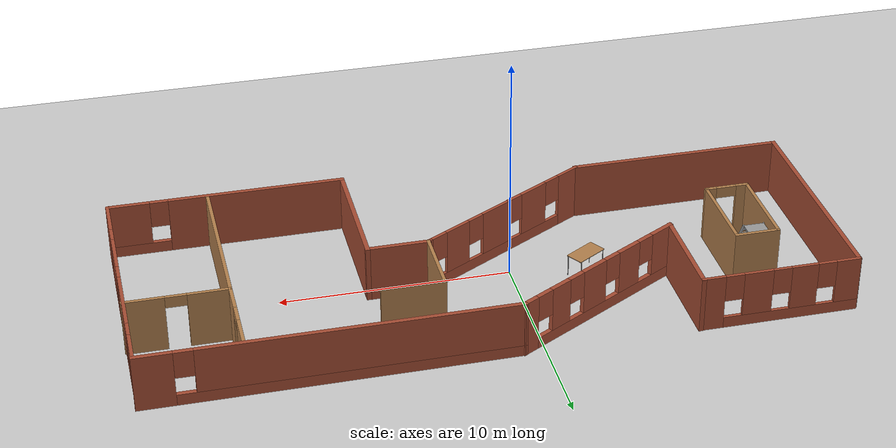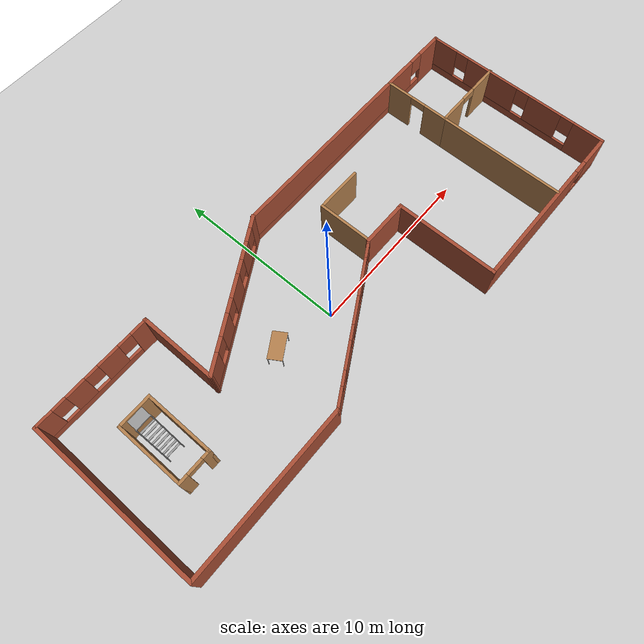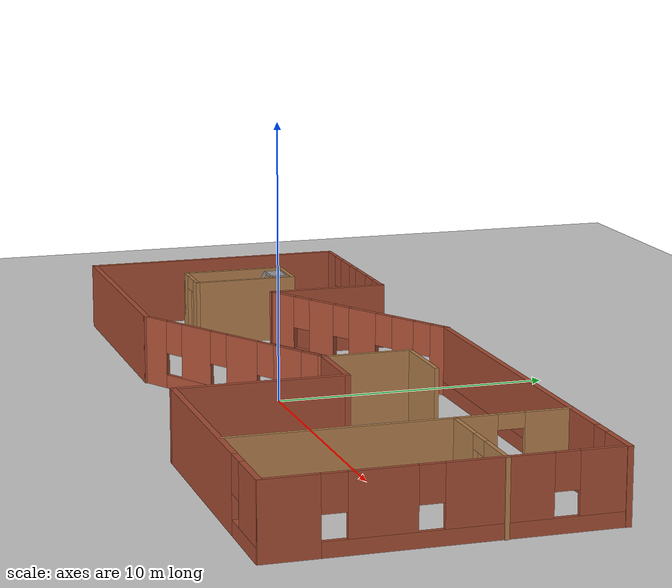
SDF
<sdf version="1.6">
 <world name="default">
  <light name="sun" type="directional">
   <pose>0 0 10 0 -0 0</pose>
   <diffuse>0.8 0.8 0.8 1</diffuse>
   <specular>0.2 0.2 0.2 1</specular>
   <attenuation>
    <range>1000</range>
    <constant>0.9</constant>
    <linear>0.01</linear>
    <quadratic>0.001</quadratic>
   </attenuation>
   <direction>-0.5 0.1 -0.9</direction>
  </light>
  <model name="ground_plane">
   <static>1</static>
   <link name="link">
    <collision name="collision">
     <geometry><plane><normal>0 0 1</normal><size>100 100</size></plane></geometry>
     <surface><friction><ode><mu>100</mu><mu2>50</mu2></ode></friction></surface>
    </collision>
    <visual name="visual">
     <cast_shadows>0</cast_shadows>
     <geometry><plane><normal>0 0 1</normal><size>100 100</size></plane></geometry>
     <material>
      <script><uri>file://media/materials/scripts/gazebo.material</uri><name>Gazebo/Grey</name></script>
     </material>
    </visual>
   </link>
  </model>
  <gravity>0 0 -9.8</gravity>
  <magnetic_field>6e-06 2.3e-05 -4.2e-05</magnetic_field>
  <atmosphere type="adiabatic"/>
  <physics name="default_physics" default="0" type="ode">
   <max_step_size>0.001</max_step_size>
   <real_time_factor>1</real_time_factor>
   <real_time_update_rate>1000</real_time_update_rate>
  </physics>
  <scene><ambient>0.4 0.4 0.4 1</ambient><background>0.7 0.7 0.7 1</background><shadows>1</shadows></scene>
  <spherical_coordinates>
   <surface_model>EARTH_WGS84</surface_model>
   <latitude_deg>0</latitude_deg>
   <longitude_deg>0</longitude_deg>
   <elevation>0</elevation>
   <heading_deg>0</heading_deg>
  </spherical_coordinates>
  <model name="less_horrible">
   <pose>1.58243 0.366715 0 0 -0 0</pose>
   <link name="Wall_11">
    <collision name="Wall_11_Collision">
     <geometry><box><size>9.54971 0.2 2.5</size></box></geometry>
     <pose>0 0 1.25 0 -0 0</pose>
    </collision>
    <visual name="Wall_11_Visual">
     <pose>0 0 1.25 0 -0 0</pose>
     <geometry><box><size>9.54971 0.2 2.5</size></box></geometry>
     <material>
      <script><uri>file://media/materials/scripts/gazebo.material</uri><name>Gazebo/Bricks</name></script>
      <ambient>1 1 1 1</ambient>
     </material>
     <meta><layer>0</layer></meta>
    </visual>
    <pose>-10.2616 -4.2375 0 0 -0 0</pose>
   </link>
   <link name="Wall_12">
    <pose>-1.75461 -2.025 0 0 -0 0.523617</pose>
    <visual name="Wall_12_Visual_0">
     <pose>-3.89721 0 1.25 0 -0 0</pose>
     <geometry><box><size>1.20558 0.15 2.5</size></box></geometry>
     <material>
      <script><uri>file://media/materials/scripts/gazebo.material</uri><name>Gazebo/Bricks</name></script>
      <ambient>1 1 1 1</ambient>
     </material>
     <meta><layer>0</layer></meta>
    </visual>
    <collision name="Wall_12_Collision_0">
     <geometry><box><size>1.20558 0.15 2.5</size></box></geometry>
     <pose>-3.89721 0 1.25 0 -0 0</pose>
    </collision>
    <visual name="Wall_12_Visual_1">
     <pose>0.602789 0 0.25 0 -0 0</pose>
     <geometry><box><size>7.79442 0.15 0.5</size></box></geometry>
     <material>
      <script><uri>file://media/materials/scripts/gazebo.material</uri><name>Gazebo/Bricks</name></script>
      <ambient>1 1 1 1</ambient>
     </material>
     <meta><layer>0</layer></meta>
    </visual>
    <collision name="Wall_12_Collision_1">
     <geometry><box><size>7.79442 0.15 0.5</size></box></geometry>
     <pose>0.602789 0 0.25 0 -0 0</pose>
    </collision>
    <visual name="Wall_12_Visual_2">
     <pose>-1.75307 0 1.5 0 -0 0</pose>
     <geometry><box><size>1.4827 0.15 2</size></box></geometry>
     <material>
      <script><uri>file://media/materials/scripts/gazebo.material</uri><name>Gazebo/Bricks</name></script>
      <ambient>1 1 1 1</ambient>
     </material>
     <meta><layer>0</layer></meta>
    </visual>
    <collision name="Wall_12_Collision_2">
     <geometry><box><size>1.4827 0.15 2</size></box></geometry>
     <pose>-1.75307 0 1.5 0 -0 0</pose>
    </collision>
    <visual name="Wall_12_Visual_3">
     <pose>0.551361 0 1.5 0 -0 0</pose>
     <geometry><box><size>1.52616 0.15 2</size></box></geometry>
     <material>
      <script><uri>file://media/materials/scripts/gazebo.material</uri><name>Gazebo/Bricks</name></script>
      <ambient>1 1 1 1</ambient>
     </material>
     <meta><layer>0</layer></meta>
    </visual>
    <collision name="Wall_12_Collision_3">
     <geometry><box><size>1.52616 0.15 2</size></box></geometry>
     <pose>0.551361 0 1.5 0 -0 0</pose>
    </collision>
    <visual name="Wall_12_Visual_4">
     <pose>2.76852 0 1.5 0 -0 0</pose>
     <geometry><box><size>1.30815 0.15 2</size></box></geometry>
     <material>
      <script><uri>file://media/materials/scripts/gazebo.material</uri><name>Gazebo/Bricks</name></script>
      <ambient>1 1 1 1</ambient>
     </material>
     <meta><layer>0</layer></meta>
    </visual>
    <collision name="Wall_12_Collision_4">
     <geometry><box><size>1.30815 0.15 2</size></box></geometry>
     <pose>2.76852 0 1.5 0 -0 0</pose>
    </collision>
    <visual name="Wall_12_Visual_5">
     <pose>4.3613 0 1.5 0 -0 0</pose>
     <geometry><box><size>0.277405 0.15 2</size></box></geometry>
     <material>
      <script><uri>file://media/materials/scripts/gazebo.material</uri><name>Gazebo/Bricks</name></script>
      <ambient>1 1 1 1</ambient>
     </material>
     <meta><layer>0</layer></meta>
    </visual>
    <collision name="Wall_12_Collision_5">
     <geometry><box><size>0.277405 0.15 2</size></box></geometry>
     <pose>4.3613 0 1.5 0 -0 0</pose>
    </collision>
    <visual name="Wall_12_Visual_6">
     <pose>-2.89442 0 1.9 0 -0 0</pose>
     <geometry><box><size>0.8 0.15 1.2</size></box></geometry>
     <material>
      <script><uri>file://media/materials/scripts/gazebo.material</uri><name>Gazebo/Bricks</name></script>
      <ambient>1 1 1 1</ambient>
     </material>
     <meta><layer>0</layer></meta>
    </visual>
    <collision name="Wall_12_Collision_6">
     <geometry><box><size>0.8 0.15 1.2</size></box></geometry>
     <pose>-2.89442 0 1.9 0 -0 0</pose>
    </collision>
    <visual name="Wall_12_Visual_7">
     <pose>-0.611721 0 1.9 0 -0 0</pose>
     <geometry><box><size>0.8 0.15 1.2</size></box></geometry>
     <material>
      <script><uri>file://media/materials/scripts/gazebo.material</uri><name>Gazebo/Bricks</name></script>
      <ambient>1 1 1 1</ambient>
     </material>
     <meta><layer>0</layer></meta>
    </visual>
    <collision name="Wall_12_Collision_7">
     <geometry><box><size>0.8 0.15 1.2</size></box></geometry>
     <pose>-0.611721 0 1.9 0 -0 0</pose>
    </collision>
    <visual name="Wall_12_Visual_8">
     <pose>1.71444 0 1.9 0 -0 0</pose>
     <geometry><box><size>0.8 0.15 1.2</size></box></geometry>
     <material>
      <script><uri>file://media/materials/scripts/gazebo.material</uri><name>Gazebo/Bricks</name></script>
      <ambient>1 1 1 1</ambient>
     </material>
     <meta><layer>0</layer></meta>
    </visual>
    <collision name="Wall_12_Collision_8">
     <geometry><box><size>0.8 0.15 1.2</size></box></geometry>
     <pose>1.71444 0 1.9 0 -0 0</pose>
    </collision>
    <visual name="Wall_12_Visual_9">
     <pose>3.8226 0 1.9 0 -0 0</pose>
     <geometry><box><size>0.8 0.15 1.2</size></box></geometry>
     <material>
      <script><uri>file://media/materials/scripts/gazebo.material</uri><name>Gazebo/Bricks</name></script>
      <ambient>1 1 1 1</ambient>
     </material>
     <meta><layer>0</layer></meta>
    </visual>
    <collision name="Wall_12_Collision_9">
     <geometry><box><size>0.8 0.15 1.2</size></box></geometry>
     <pose>3.8226 0 1.9 0 -0 0</pose>
    </collision>
   </link>
   <link name="Wall_13">
    <collision name="Wall_13_Collision">
     <geometry><box><size>2.80004 0.2 2.5</size></box></geometry>
     <pose>0 0 1.25 0 -0 0</pose>
    </collision>
    <visual name="Wall_13_Visual">
     <pose>0 0 1.25 0 -0 0</pose>
     <geometry><box><size>2.80004 0.2 2.5</size></box></geometry>
     <material>
      <script><uri>file://media/materials/scripts/gazebo.material</uri><name>Gazebo/Bricks</name></script>
      <ambient>1 1 1 1</ambient>
     </material>
     <meta><layer>0</layer></meta>
    </visual>
    <pose>3.37739 0.1875 0 0 -0 0</pose>
   </link>
   <link name="Wall_14">
    <collision name="Wall_14_Collision">
     <geometry><box><size>6.05 0.2 2.5</size></box></geometry>
     <pose>0 0 1.25 0 -0 0</pose>
    </collision>
    <visual name="Wall_14_Visual">
     <pose>0 0 1.25 0 -0 0</pose>
     <geometry><box><size>6.05 0.2 2.5</size></box></geometry>
     <material>
      <script><uri>file://media/materials/scripts/gazebo.material</uri><name>Gazebo/Bricks</name></script>
      <ambient>1 1 1 1</ambient>
     </material>
     <meta><layer>0</layer></meta>
    </visual>
    <pose>4.67739 -2.7375 0 0 0 -1.5708</pose>
   </link>
   <link name="Wall_18">
    <pose>9.77389 -5.6625 0 0 -0 0</pose>
    <visual name="Wall_18_Visual_0">
     <pose>-1.32868 0 1.25 0 -0 0</pose>
     <geometry><box><size>7.73564 0.2 2.5</size></box></geometry>
     <material>
      <script><uri>file://media/materials/scripts/gazebo.material</uri><name>Gazebo/Bricks</name></script>
      <ambient>1 1 1 1</ambient>
     </material>
     <meta><layer>0</layer></meta>
    </visual>
    <collision name="Wall_18_Collision_0">
     <geometry><box><size>7.73564 0.2 2.5</size></box></geometry>
     <pose>-1.32868 0 1.25 0 -0 0</pose>
    </collision>
    <visual name="Wall_18_Visual_1">
     <pose>3.86782 0 0.25 0 -0 0</pose>
     <geometry><box><size>2.65736 0.2 0.5</size></box></geometry>
     <material>
      <script><uri>file://media/materials/scripts/gazebo.material</uri><name>Gazebo/Bricks</name></script>
      <ambient>1 1 1 1</ambient>
     </material>
     <meta><layer>0</layer></meta>
    </visual>
    <collision name="Wall_18_Collision_1">
     <geometry><box><size>2.65736 0.2 0.5</size></box></geometry>
     <pose>3.86782 0 0.25 0 -0 0</pose>
    </collision>
    <visual name="Wall_18_Visual_2">
     <pose>4.26782 0 1.5 0 -0 0</pose>
     <geometry><box><size>1.85736 0.2 2</size></box></geometry>
     <material>
      <script><uri>file://media/materials/scripts/gazebo.material</uri><name>Gazebo/Bricks</name></script>
      <ambient>1 1 1 1</ambient>
     </material>
     <meta><layer>0</layer></meta>
    </visual>
    <collision name="Wall_18_Collision_2">
     <geometry><box><size>1.85736 0.2 2</size></box></geometry>
     <pose>4.26782 0 1.5 0 -0 0</pose>
    </collision>
    <visual name="Wall_18_Visual_3">
     <pose>2.93914 0 1.9 0 -0 0</pose>
     <geometry><box><size>0.8 0.2 1.2</size></box></geometry>
     <material>
      <script><uri>file://media/materials/scripts/gazebo.material</uri><name>Gazebo/Bricks</name></script>
      <ambient>1 1 1 1</ambient>
     </material>
     <meta><layer>0</layer></meta>
    </visual>
    <collision name="Wall_18_Collision_3">
     <geometry><box><size>0.8 0.2 1.2</size></box></geometry>
     <pose>2.93914 0 1.9 0 -0 0</pose>
    </collision>
   </link>
   <link name="Wall_21">
    <pose>10.6116 3.68688 0 0 0 -1.5708</pose>
    <visual name="Wall_21_Visual_0">
     <pose>-1.17669 0 1.25 0 -0 0</pose>
     <geometry><box><size>1.64661 0.15 2.5</size></box></geometry>
     <material>
      <script><uri>file://media/materials/scripts/gazebo.material</uri><name>Gazebo/Wood</name></script>
      <ambient>1 1 1 1</ambient>
     </material>
     <meta><layer>0</layer></meta>
    </visual>
    <collision name="Wall_21_Collision_0">
     <geometry><box><size>1.64661 0.15 2.5</size></box></geometry>
     <pose>-1.17669 0 1.25 0 -0 0</pose>
    </collision>
    <visual name="Wall_21_Visual_1">
     <pose>1.27331 0 1.25 0 -0 0</pose>
     <geometry><box><size>1.45338 0.15 2.5</size></box></geometry>
     <material>
      <script><uri>file://media/materials/scripts/gazebo.material</uri><name>Gazebo/Wood</name></script>
      <ambient>1 1 1 1</ambient>
     </material>
     <meta><layer>0</layer></meta>
    </visual>
    <collision name="Wall_21_Collision_1">
     <geometry><box><size>1.45338 0.15 2.5</size></box></geometry>
     <pose>1.27331 0 1.25 0 -0 0</pose>
    </collision>
    <visual name="Wall_21_Visual_2">
     <pose>0.096615 0 2.25 0 -0 0</pose>
     <geometry><box><size>0.9 0.15 0.5</size></box></geometry>
     <material>
      <script><uri>file://media/materials/scripts/gazebo.material</uri><name>Gazebo/Wood</name></script>
      <ambient>1 1 1 1</ambient>
     </material>
     <meta><layer>0</layer></meta>
    </visual>
    <collision name="Wall_21_Collision_2">
     <geometry><box><size>0.9 0.15 0.5</size></box></geometry>
     <pose>0.096615 0 2.25 0 -0 0</pose>
    </collision>
   </link>
   <link name="Wall_22">
    <pose>12.7866 1.76188 0 0 -0 0</pose>
    <visual name="Wall_22_Visual_0">
     <pose>-1.33359 0 1.25 0 -0 0</pose>
     <geometry><box><size>1.83282 0.15 2.5</size></box></geometry>
     <material>
      <script><uri>file://media/materials/scripts/gazebo.material</uri><name>Gazebo/Wood</name></script>
      <ambient>1 1 1 1</ambient>
     </material>
     <meta><layer>0</layer></meta>
    </visual>
    <collision name="Wall_22_Collision_0">
     <geometry><box><size>1.83282 0.15 2.5</size></box></geometry>
     <pose>-1.33359 0 1.25 0 -0 0</pose>
    </collision>
    <visual name="Wall_22_Visual_1">
     <pose>1.36641 0 1.25 0 -0 0</pose>
     <geometry><box><size>1.76718 0.15 2.5</size></box></geometry>
     <material>
      <script><uri>file://media/materials/scripts/gazebo.material</uri><name>Gazebo/Wood</name></script>
      <ambient>1 1 1 1</ambient>
     </material>
     <meta><layer>0</layer></meta>
    </visual>
    <collision name="Wall_22_Collision_1">
     <geometry><box><size>1.76718 0.15 2.5</size></box></geometry>
     <pose>1.36641 0 1.25 0 -0 0</pose>
    </collision>
    <visual name="Wall_22_Visual_2">
     <pose>0.032816 0 2.25 0 -0 0</pose>
     <geometry><box><size>0.9 0.15 0.5</size></box></geometry>
     <material>
      <script><uri>file://media/materials/scripts/gazebo.material</uri><name>Gazebo/Wood</name></script>
      <ambient>1 1 1 1</ambient>
     </material>
     <meta><layer>0</layer></meta>
    </visual>
    <collision name="Wall_22_Collision_2">
     <geometry><box><size>0.9 0.15 0.5</size></box></geometry>
     <pose>0.032816 0 2.25 0 -0 0</pose>
    </collision>
   </link>
   <link name="Wall_24">
    <collision name="Wall_24_Collision">
     <geometry><box><size>7.5 0.15 2.5</size></box></geometry>
     <pose>0 0 1.25 0 -0 0</pose>
    </collision>
    <visual name="Wall_24_Visual">
     <pose>0 0 1.25 0 -0 0</pose>
     <geometry><box><size>7.5 0.15 2.5</size></box></geometry>
     <material>
      <script><uri>file://media/materials/scripts/gazebo.material</uri><name>Gazebo/Wood</name></script>
      <ambient>1 1 1 1</ambient>
     </material>
     <meta><layer>0</layer></meta>
    </visual>
    <pose>10.6116 -1.91312 0 0 0 -1.5708</pose>
   </link>
   <link name="Wall_3">
    <collision name="Wall_3_Collision">
     <geometry><box><size>10.0498 0.2 2.5</size></box></geometry>
     <pose>0 0 1.25 0 -0 0</pose>
    </collision>
    <visual name="Wall_3_Visual">
     <pose>0 0 1.25 0 -0 0</pose>
     <geometry><box><size>10.0498 0.2 2.5</size></box></geometry>
     <material>
      <script><uri>file://media/materials/scripts/gazebo.material</uri><name>Gazebo/Bricks</name></script>
      <ambient>1 1 1 1</ambient>
     </material>
     <meta><layer>0</layer></meta>
    </visual>
    <pose>-14.9366 0.6875 0 0 0 -1.5708</pose>
   </link>
   <link name="Wall_5">
    <pose>14.9134 -0.0265 0 0 -0 1.5708</pose>
    <visual name="Wall_5_Visual_0">
     <pose>-4.77314 0 1.25 0 -0 0</pose>
     <geometry><box><size>1.88171 0.15 2.5</size></box></geometry>
     <material>
      <script><uri>file://media/materials/scripts/gazebo.material</uri><name>Gazebo/Bricks</name></script>
      <ambient>1 1 1 1</ambient>
     </material>
     <meta><layer>0</layer></meta>
    </visual>
    <collision name="Wall_5_Collision_0">
     <geometry><box><size>1.88171 0.15 2.5</size></box></geometry>
     <pose>-4.77314 0 1.25 0 -0 0</pose>
    </collision>
    <visual name="Wall_5_Visual_1">
     <pose>0.940857 0 0.25 0 -0 0</pose>
     <geometry><box><size>9.54629 0.15 0.5</size></box></geometry>
     <material>
      <script><uri>file://media/materials/scripts/gazebo.material</uri><name>Gazebo/Bricks</name></script>
      <ambient>1 1 1 1</ambient>
     </material>
     <meta><layer>0</layer></meta>
    </visual>
    <collision name="Wall_5_Collision_1">
     <geometry><box><size>9.54629 0.15 0.5</size></box></geometry>
     <pose>0.940857 0 0.25 0 -0 0</pose>
    </collision>
    <visual name="Wall_5_Visual_2">
     <pose>-1.96928 0 1.5 0 -0 0</pose>
     <geometry><box><size>2.12602 0.15 2</size></box></geometry>
     <material>
      <script><uri>file://media/materials/scripts/gazebo.material</uri><name>Gazebo/Bricks</name></script>
      <ambient>1 1 1 1</ambient>
     </material>
     <meta><layer>0</layer></meta>
    </visual>
    <collision name="Wall_5_Collision_2">
     <geometry><box><size>2.12602 0.15 2</size></box></geometry>
     <pose>-1.96928 0 1.5 0 -0 0</pose>
    </collision>
    <visual name="Wall_5_Visual_3">
     <pose>1.58185 0 1.5 0 -0 0</pose>
     <geometry><box><size>3.37623 0.15 2</size></box></geometry>
     <material>
      <script><uri>file://media/materials/scripts/gazebo.material</uri><name>Gazebo/Bricks</name></script>
      <ambient>1 1 1 1</ambient>
     </material>
     <meta><layer>0</layer></meta>
    </visual>
    <collision name="Wall_5_Collision_3">
     <geometry><box><size>3.37623 0.15 2</size></box></geometry>
     <pose>1.58185 0 1.5 0 -0 0</pose>
    </collision>
    <visual name="Wall_5_Visual_4">
     <pose>4.89198 0 1.5 0 -0 0</pose>
     <geometry><box><size>1.64403 0.15 2</size></box></geometry>
     <material>
      <script><uri>file://media/materials/scripts/gazebo.material</uri><name>Gazebo/Bricks</name></script>
      <ambient>1 1 1 1</ambient>
     </material>
     <meta><layer>0</layer></meta>
    </visual>
    <collision name="Wall_5_Collision_4">
     <geometry><box><size>1.64403 0.15 2</size></box></geometry>
     <pose>4.89198 0 1.5 0 -0 0</pose>
    </collision>
    <visual name="Wall_5_Visual_5">
     <pose>-3.43229 0 1.9 0 -0 0</pose>
     <geometry><box><size>0.8 0.15 1.2</size></box></geometry>
     <material>
      <script><uri>file://media/materials/scripts/gazebo.material</uri><name>Gazebo/Bricks</name></script>
      <ambient>1 1 1 1</ambient>
     </material>
     <meta><layer>0</layer></meta>
    </visual>
    <collision name="Wall_5_Collision_5">
     <geometry><box><size>0.8 0.15 1.2</size></box></geometry>
     <pose>-3.43229 0 1.9 0 -0 0</pose>
    </collision>
    <visual name="Wall_5_Visual_6">
     <pose>-0.506265 0 1.9 0 -0 0</pose>
     <geometry><box><size>0.8 0.15 1.2</size></box></geometry>
     <material>
      <script><uri>file://media/materials/scripts/gazebo.material</uri><name>Gazebo/Bricks</name></script>
      <ambient>1 1 1 1</ambient>
     </material>
     <meta><layer>0</layer></meta>
    </visual>
    <collision name="Wall_5_Collision_6">
     <geometry><box><size>0.8 0.15 1.2</size></box></geometry>
     <pose>-0.506265 0 1.9 0 -0 0</pose>
    </collision>
    <visual name="Wall_5_Visual_7">
     <pose>3.66997 0 1.9 0 -0 0</pose>
     <geometry><box><size>0.8 0.15 1.2</size></box></geometry>
     <material>
      <script><uri>file://media/materials/scripts/gazebo.material</uri><name>Gazebo/Bricks</name></script>
      <ambient>1 1 1 1</ambient>
     </material>
     <meta><layer>0</layer></meta>
    </visual>
    <collision name="Wall_5_Collision_7">
     <geometry><box><size>0.8 0.15 1.2</size></box></geometry>
     <pose>3.66997 0 1.9 0 -0 0</pose>
    </collision>
   </link>
   <link name="Wall_6">
    <pose>7.11339 5.6125 0 0 -0 3.14159</pose>
    <visual name="Wall_6_Visual_0">
     <pose>-7.08284 0 1.25 0 -0 0</pose>
     <geometry><box><size>1.63432 0.2 2.5</size></box></geometry>
     <material>
      <script><uri>file://media/materials/scripts/gazebo.material</uri><name>Gazebo/Bricks</name></script>
      <ambient>1 1 1 1</ambient>
     </material>
     <meta><layer>0</layer></meta>
    </visual>
    <collision name="Wall_6_Collision_0">
     <geometry><box><size>1.63432 0.2 2.5</size></box></geometry>
     <pose>-7.08284 0 1.25 0 -0 0</pose>
    </collision>
    <visual name="Wall_6_Visual_1">
     <pose>0.817161 0 0.25 0 -0 0</pose>
     <geometry><box><size>14.1657 0.2 0.5</size></box></geometry>
     <material>
      <script><uri>file://media/materials/scripts/gazebo.material</uri><name>Gazebo/Bricks</name></script>
      <ambient>1 1 1 1</ambient>
     </material>
     <meta><layer>0</layer></meta>
    </visual>
    <collision name="Wall_6_Collision_1">
     <geometry><box><size>14.1657 0.2 0.5</size></box></geometry>
     <pose>0.817161 0 0.25 0 -0 0</pose>
    </collision>
    <visual name="Wall_6_Visual_2">
     <pose>1.21716 0 1.5 0 -0 0</pose>
     <geometry><box><size>13.3657 0.2 2</size></box></geometry>
     <material>
      <script><uri>file://media/materials/scripts/gazebo.material</uri><name>Gazebo/Bricks</name></script>
      <ambient>1 1 1 1</ambient>
     </material>
     <meta><layer>0</layer></meta>
    </visual>
    <collision name="Wall_6_Collision_2">
     <geometry><box><size>13.3657 0.2 2</size></box></geometry>
     <pose>1.21716 0 1.5 0 -0 0</pose>
    </collision>
    <visual name="Wall_6_Visual_3">
     <pose>-5.86568 0 1.9 0 -0 0</pose>
     <geometry><box><size>0.8 0.2 1.2</size></box></geometry>
     <material>
      <script><uri>file://media/materials/scripts/gazebo.material</uri><name>Gazebo/Bricks</name></script>
      <ambient>1 1 1 1</ambient>
     </material>
     <meta><layer>0</layer></meta>
    </visual>
    <collision name="Wall_6_Collision_3">
     <geometry><box><size>0.8 0.2 1.2</size></box></geometry>
     <pose>-5.86568 0 1.9 0 -0 0</pose>
    </collision>
   </link>
   <link name="Wall_69">
    <collision name="Wall_69_Collision">
     <geometry><box><size>3.25 0.15 2.5</size></box></geometry>
     <pose>0 0 1.25 0 -0 0</pose>
    </collision>
    <visual name="Wall_69_Visual">
     <pose>0 0 1.25 0 -0 0</pose>
     <geometry><box><size>3.25 0.15 2.5</size></box></geometry>
     <material>
      <script><uri>file://media/materials/scripts/gazebo.material</uri><name>Gazebo/Wood</name></script>
      <ambient>1 1 1 1</ambient>
     </material>
     <meta><layer>0</layer></meta>
    </visual>
    <pose>2.07741 1.73758 0 0 -0 1.57079</pose>
   </link>
   <link name="Wall_7">
    <pose>-4.42411 3.4625 0 0 0 -2.61957</pose>
    <visual name="Wall_7_Visual_0">
     <pose>-4.02424 0 1.25 0 -0 0</pose>
     <geometry><box><size>0.775071 0.2 2.5</size></box></geometry>
     <material>
      <script><uri>file://media/materials/scripts/gazebo.material</uri><name>Gazebo/Bricks</name></script>
      <ambient>1 1 1 1</ambient>
     </material>
     <meta><layer>0</layer></meta>
    </visual>
    <collision name="Wall_7_Collision_0">
     <geometry><box><size>0.775071 0.2 2.5</size></box></geometry>
     <pose>-4.02424 0 1.25 0 -0 0</pose>
    </collision>
    <visual name="Wall_7_Visual_1">
     <pose>0.387535 0 0.25 0 -0 0</pose>
     <geometry><box><size>8.04848 0.2 0.5</size></box></geometry>
     <material>
      <script><uri>file://media/materials/scripts/gazebo.material</uri><name>Gazebo/Bricks</name></script>
      <ambient>1 1 1 1</ambient>
     </material>
     <meta><layer>0</layer></meta>
    </visual>
    <collision name="Wall_7_Collision_1">
     <geometry><box><size>8.04848 0.2 0.5</size></box></geometry>
     <pose>0.387535 0 0.25 0 -0 0</pose>
    </collision>
    <visual name="Wall_7_Visual_2">
     <pose>-2.32092 0 1.5 0 -0 0</pose>
     <geometry><box><size>1.03156 0.2 2</size></box></geometry>
     <material>
      <script><uri>file://media/materials/scripts/gazebo.material</uri><name>Gazebo/Bricks</name></script>
      <ambient>1 1 1 1</ambient>
     </material>
     <meta><layer>0</layer></meta>
    </visual>
    <collision name="Wall_7_Collision_2">
     <geometry><box><size>1.03156 0.2 2</size></box></geometry>
     <pose>-2.32092 0 1.5 0 -0 0</pose>
    </collision>
    <visual name="Wall_7_Visual_3">
     <pose>-0.346126 0 1.5 0 -0 0</pose>
     <geometry><box><size>1.31804 0.2 2</size></box></geometry>
     <material>
      <script><uri>file://media/materials/scripts/gazebo.material</uri><name>Gazebo/Bricks</name></script>
      <ambient>1 1 1 1</ambient>
     </material>
     <meta><layer>0</layer></meta>
    </visual>
    <collision name="Wall_7_Collision_3">
     <geometry><box><size>1.31804 0.2 2</size></box></geometry>
     <pose>-0.346126 0 1.5 0 -0 0</pose>
    </collision>
    <visual name="Wall_7_Visual_4">
     <pose>1.72376 0 1.5 0 -0 0</pose>
     <geometry><box><size>1.22172 0.2 2</size></box></geometry>
     <material>
      <script><uri>file://media/materials/scripts/gazebo.material</uri><name>Gazebo/Bricks</name></script>
      <ambient>1 1 1 1</ambient>
     </material>
     <meta><layer>0</layer></meta>
    </visual>
    <collision name="Wall_7_Collision_4">
     <geometry><box><size>1.22172 0.2 2</size></box></geometry>
     <pose>1.72376 0 1.5 0 -0 0</pose>
    </collision>
    <visual name="Wall_7_Visual_5">
     <pose>3.7732 0 1.5 0 -0 0</pose>
     <geometry><box><size>1.27716 0.2 2</size></box></geometry>
     <material>
      <script><uri>file://media/materials/scripts/gazebo.material</uri><name>Gazebo/Bricks</name></script>
      <ambient>1 1 1 1</ambient>
     </material>
     <meta><layer>0</layer></meta>
    </visual>
    <collision name="Wall_7_Collision_5">
     <geometry><box><size>1.27716 0.2 2</size></box></geometry>
     <pose>3.7732 0 1.5 0 -0 0</pose>
    </collision>
    <visual name="Wall_7_Visual_6">
     <pose>-3.2367 0 1.9 0 -0 0</pose>
     <geometry><box><size>0.8 0.2 1.2</size></box></geometry>
     <material>
      <script><uri>file://media/materials/scripts/gazebo.material</uri><name>Gazebo/Bricks</name></script>
      <ambient>1 1 1 1</ambient>
     </material>
     <meta><layer>0</layer></meta>
    </visual>
    <collision name="Wall_7_Collision_6">
     <geometry><box><size>0.8 0.2 1.2</size></box></geometry>
     <pose>-3.2367 0 1.9 0 -0 0</pose>
    </collision>
    <visual name="Wall_7_Visual_7">
     <pose>-1.40515 0 1.9 0 -0 0</pose>
     <geometry><box><size>0.8 0.2 1.2</size></box></geometry>
     <material>
      <script><uri>file://media/materials/scripts/gazebo.material</uri><name>Gazebo/Bricks</name></script>
      <ambient>1 1 1 1</ambient>
     </material>
     <meta><layer>0</layer></meta>
    </visual>
    <collision name="Wall_7_Collision_7">
     <geometry><box><size>0.8 0.2 1.2</size></box></geometry>
     <pose>-1.40515 0 1.9 0 -0 0</pose>
    </collision>
    <visual name="Wall_7_Visual_8">
     <pose>0.712894 0 1.9 0 -0 0</pose>
     <geometry><box><size>0.8 0.2 1.2</size></box></geometry>
     <material>
      <script><uri>file://media/materials/scripts/gazebo.material</uri><name>Gazebo/Bricks</name></script>
      <ambient>1 1 1 1</ambient>
     </material>
     <meta><layer>0</layer></meta>
    </visual>
    <collision name="Wall_7_Collision_8">
     <geometry><box><size>0.8 0.2 1.2</size></box></geometry>
     <pose>0.712894 0 1.9 0 -0 0</pose>
    </collision>
    <visual name="Wall_7_Visual_9">
     <pose>2.73462 0 1.9 0 -0 0</pose>
     <geometry><box><size>0.8 0.2 1.2</size></box></geometry>
     <material>
      <script><uri>file://media/materials/scripts/gazebo.material</uri><name>Gazebo/Bricks</name></script>
      <ambient>1 1 1 1</ambient>
     </material>
     <meta><layer>0</layer></meta>
    </visual>
    <collision name="Wall_7_Collision_9">
     <geometry><box><size>0.8 0.2 1.2</size></box></geometry>
     <pose>2.73462 0 1.9 0 -0 0</pose>
    </collision>
   </link>
   <link name="Wall_70">
    <collision name="Wall_70_Collision">
     <geometry><box><size>2.75 0.15 2.5</size></box></geometry>
     <pose>0 0 1.25 0 -0 0</pose>
    </collision>
    <visual name="Wall_70_Visual">
     <pose>0 0 1.25 0 -0 0</pose>
     <geometry><box><size>2.75 0.15 2.5</size></box></geometry>
     <material>
      <script><uri>file://media/materials/scripts/gazebo.material</uri><name>Gazebo/Wood</name></script>
      <ambient>1 1 1 1</ambient>
     </material>
     <meta><layer>0</layer></meta>
    </visual>
    <pose>3.37743 3.28767 0 0 -0 0</pose>
   </link>
   <link name="Wall_72">
    <collision name="Wall_72_Collision">
     <geometry><box><size>2 0.15 2.5</size></box></geometry>
     <pose>0 0 1.25 0 -0 0</pose>
    </collision>
    <visual name="Wall_72_Visual">
     <pose>0 0 1.25 0 -0 0</pose>
     <geometry><box><size>2 0.15 2.5</size></box></geometry>
     <material>
      <script><uri>file://media/materials/scripts/gazebo.material</uri><name>Gazebo/Wood</name></script>
      <ambient>1 1 1 1</ambient>
     </material>
     <meta><layer>0</layer></meta>
    </visual>
    <pose>-11.5524 2.79226 0 0 -0 0</pose>
   </link>
   <link name="Wall_73">
    <collision name="Wall_73_Collision">
     <geometry><box><size>4 0.15 2.5</size></box></geometry>
     <pose>0 0 1.25 0 -0 0</pose>
    </collision>
    <visual name="Wall_73_Visual">
     <pose>0 0 1.25 0 -0 0</pose>
     <geometry><box><size>4 0.15 2.5</size></box></geometry>
     <material>
      <script><uri>file://media/materials/scripts/gazebo.material</uri><name>Gazebo/Wood</name></script>
      <ambient>1 1 1 1</ambient>
     </material>
     <meta><layer>0</layer></meta>
    </visual>
    <pose>-10.6274 0.86726 0 0 0 -1.5708</pose>
   </link>
   <link name="Wall_77">
    <collision name="Wall_77_Collision">
     <geometry><box><size>4 0.15 2.5</size></box></geometry>
     <pose>0 0 1.25 0 -0 0</pose>
    </collision>
    <visual name="Wall_77_Visual">
     <pose>0 0 1.25 0 -0 0</pose>
     <geometry><box><size>4 0.15 2.5</size></box></geometry>
     <material>
      <script><uri>file://media/materials/scripts/gazebo.material</uri><name>Gazebo/Wood</name></script>
      <ambient>1 1 1 1</ambient>
     </material>
     <meta><layer>0</layer></meta>
    </visual>
    <pose>-12.4774 0.86726 0 0 0 -1.5708</pose>
   </link>
   <link name="Wall_78">
    <pose>-11.5524 -1.05774 0 0 -0 0</pose>
    <visual name="Wall_78_Visual_0">
     <pose>-0.708696 0 1.25 0 -0 0</pose>
     <geometry><box><size>0.582607 0.15 2.5</size></box></geometry>
     <material>
      <script><uri>file://media/materials/scripts/gazebo.material</uri><name>Gazebo/Wood</name></script>
      <ambient>1 1 1 1</ambient>
     </material>
     <meta><layer>0</layer></meta>
    </visual>
    <collision name="Wall_78_Collision_0">
     <geometry><box><size>0.582607 0.15 2.5</size></box></geometry>
     <pose>-0.708696 0 1.25 0 -0 0</pose>
    </collision>
    <visual name="Wall_78_Visual_1">
     <pose>0.741304 0 1.25 0 -0 0</pose>
     <geometry><box><size>0.517393 0.15 2.5</size></box></geometry>
     <material>
      <script><uri>file://media/materials/scripts/gazebo.material</uri><name>Gazebo/Wood</name></script>
      <ambient>1 1 1 1</ambient>
     </material>
     <meta><layer>0</layer></meta>
    </visual>
    <collision name="Wall_78_Collision_1">
     <geometry><box><size>0.517393 0.15 2.5</size></box></geometry>
     <pose>0.741304 0 1.25 0 -0 0</pose>
    </collision>
    <visual name="Wall_78_Visual_2">
     <pose>0.032607 0 2.25 0 -0 0</pose>
     <geometry><box><size>0.9 0.15 0.5</size></box></geometry>
     <material>
      <script><uri>file://media/materials/scripts/gazebo.material</uri><name>Gazebo/Wood</name></script>
      <ambient>1 1 1 1</ambient>
     </material>
     <meta><layer>0</layer></meta>
    </visual>
    <collision name="Wall_78_Collision_2">
     <geometry><box><size>0.9 0.15 0.5</size></box></geometry>
     <pose>0.032607 0 2.25 0 -0 0</pose>
    </collision>
   </link>
   <link name="Wall_8">
    <collision name="Wall_8_Collision">
     <geometry><box><size>4.55 0.2 2.5</size></box></geometry>
     <pose>0 0 1.25 0 -0 0</pose>
    </collision>
    <visual name="Wall_8_Visual">
     <pose>0 0 1.25 0 -0 0</pose>
     <geometry><box><size>4.55 0.2 2.5</size></box></geometry>
     <material>
      <script><uri>file://media/materials/scripts/gazebo.material</uri><name>Gazebo/Bricks</name></script>
      <ambient>1 1 1 1</ambient>
     </material>
     <meta><layer>0</layer></meta>
    </visual>
    <pose>-8.16161 3.4875 0 0 -0 1.5708</pose>
   </link>
   <link name="Wall_9">
    <pose>-11.5456 5.6625 0 0 -0 3.14159</pose>
    <visual name="Wall_9_Visual_0">
     <pose>-2.94245 0 1.25 0 -0 0</pose>
     <geometry><box><size>1.03311 0.15 2.5</size></box></geometry>
     <material>
      <script><uri>file://media/materials/scripts/gazebo.material</uri><name>Gazebo/Bricks</name></script>
      <ambient>1 1 1 1</ambient>
     </material>
     <meta><layer>0</layer></meta>
    </visual>
    <collision name="Wall_9_Collision_0">
     <geometry><box><size>1.03311 0.15 2.5</size></box></geometry>
     <pose>-2.94245 0 1.25 0 -0 0</pose>
    </collision>
    <visual name="Wall_9_Visual_1">
     <pose>0.516555 0 0.25 0 -0 0</pose>
     <geometry><box><size>5.88489 0.15 0.5</size></box></geometry>
     <material>
      <script><uri>file://media/materials/scripts/gazebo.material</uri><name>Gazebo/Bricks</name></script>
      <ambient>1 1 1 1</ambient>
     </material>
     <meta><layer>0</layer></meta>
    </visual>
    <collision name="Wall_9_Collision_1">
     <geometry><box><size>5.88489 0.15 0.5</size></box></geometry>
     <pose>0.516555 0 0.25 0 -0 0</pose>
    </collision>
    <visual name="Wall_9_Visual_2">
     <pose>-0.992604 0 1.5 0 -0 0</pose>
     <geometry><box><size>1.26657 0.15 2</size></box></geometry>
     <material>
      <script><uri>file://media/materials/scripts/gazebo.material</uri><name>Gazebo/Bricks</name></script>
      <ambient>1 1 1 1</ambient>
     </material>
     <meta><layer>0</layer></meta>
    </visual>
    <collision name="Wall_9_Collision_2">
     <geometry><box><size>1.26657 0.15 2</size></box></geometry>
     <pose>-0.992604 0 1.5 0 -0 0</pose>
    </collision>
    <visual name="Wall_9_Visual_3">
     <pose>1.02098 0 1.5 0 -0 0</pose>
     <geometry><box><size>1.16059 0.15 2</size></box></geometry>
     <material>
      <script><uri>file://media/materials/scripts/gazebo.material</uri><name>Gazebo/Bricks</name></script>
      <ambient>1 1 1 1</ambient>
     </material>
     <meta><layer>0</layer></meta>
    </visual>
    <collision name="Wall_9_Collision_3">
     <geometry><box><size>1.16059 0.15 2</size></box></geometry>
     <pose>1.02098 0 1.5 0 -0 0</pose>
    </collision>
    <visual name="Wall_9_Visual_4">
     <pose>2.93014 0 1.5 0 -0 0</pose>
     <geometry><box><size>1.05773 0.15 2</size></box></geometry>
     <material>
      <script><uri>file://media/materials/scripts/gazebo.material</uri><name>Gazebo/Bricks</name></script>
      <ambient>1 1 1 1</ambient>
     </material>
     <meta><layer>0</layer></meta>
    </visual>
    <collision name="Wall_9_Collision_4">
     <geometry><box><size>1.05773 0.15 2</size></box></geometry>
     <pose>2.93014 0 1.5 0 -0 0</pose>
    </collision>
    <visual name="Wall_9_Visual_5">
     <pose>-2.02589 0 1.9 0 -0 0</pose>
     <geometry><box><size>0.8 0.15 1.2</size></box></geometry>
     <material>
      <script><uri>file://media/materials/scripts/gazebo.material</uri><name>Gazebo/Bricks</name></script>
      <ambient>1 1 1 1</ambient>
     </material>
     <meta><layer>0</layer></meta>
    </visual>
    <collision name="Wall_9_Collision_5">
     <geometry><box><size>0.8 0.15 1.2</size></box></geometry>
     <pose>-2.02589 0 1.9 0 -0 0</pose>
    </collision>
    <visual name="Wall_9_Visual_6">
     <pose>0.040682 0 1.9 0 -0 0</pose>
     <geometry><box><size>0.8 0.15 1.2</size></box></geometry>
     <material>
      <script><uri>file://media/materials/scripts/gazebo.material</uri><name>Gazebo/Bricks</name></script>
      <ambient>1 1 1 1</ambient>
     </material>
     <meta><layer>0</layer></meta>
    </visual>
    <collision name="Wall_9_Collision_6">
     <geometry><box><size>0.8 0.15 1.2</size></box></geometry>
     <pose>0.040682 0 1.9 0 -0 0</pose>
    </collision>
    <visual name="Wall_9_Visual_7">
     <pose>2.00128 0 1.9 0 -0 0</pose>
     <geometry><box><size>0.8 0.15 1.2</size></box></geometry>
     <material>
      <script><uri>file://media/materials/scripts/gazebo.material</uri><name>Gazebo/Bricks</name></script>
      <ambient>1 1 1 1</ambient>
     </material>
     <meta><layer>0</layer></meta>
    </visual>
    <collision name="Wall_9_Collision_7">
     <geometry><box><size>0.8 0.15 1.2</size></box></geometry>
     <pose>2.00128 0 1.9 0 -0 0</pose>
    </collision>
   </link>
   <static>1</static>
  </model>
  <model name="ladder_60deg_0rails">
   <static>1</static>
   <link name="step0">
    <pose>0 0.15396 0.266667 0 -0 0</pose>
    <inertial>
     <mass>9.75482</mass>
     <inertia>
      <ixx>0.00957124</ixx>
      <iyy>0.65963</iyy>
      <izz>0.666842</izz>
      <ixy>0</ixy>
      <ixz>0</ixz>
      <iyz>0</iyz>
     </inertia>
    </inertial>
    <collision name="collision"><geometry><box><size>0.9 0.1016 0.0381</size></box></geometry></collision>
    <visual name="visual">
     <geometry><box><size>0.9 0.1016 0.0381</size></box></geometry>
     <material>
      <script><uri>file://media/materials/scripts/gazebo.material</uri><name>Gazebo/Grey</name></script>
     </material>
    </visual>
   </link>
   <link name="step1">
    <pose>0 0.30792 0.533333 0 -0 0</pose>
    <inertial>
     <mass>9.75482</mass>
     <inertia>
      <ixx>0.00957124</ixx>
      <iyy>0.65963</iyy>
      <izz>0.666842</izz>
      <ixy>0</ixy>
      <ixz>0</ixz>
      <iyz>0</iyz>
     </inertia>
    </inertial>
    <collision name="collision"><geometry><box><size>0.9 0.1016 0.0381</size></box></geometry></collision>
    <visual name="visual">
     <geometry><box><size>0.9 0.1016 0.0381</size></box></geometry>
     <material>
      <script><uri>file://media/materials/scripts/gazebo.material</uri><name>Gazebo/Grey</name></script>
     </material>
    </visual>
   </link>
   <link name="step2">
    <pose>0 0.46188 0.8 0 -0 0</pose>
    <inertial>
     <mass>9.75482</mass>
     <inertia>
      <ixx>0.00957124</ixx>
      <iyy>0.65963</iyy>
      <izz>0.666842</izz>
      <ixy>0</ixy>
      <ixz>0</ixz>
      <iyz>0</iyz>
     </inertia>
    </inertial>
    <collision name="collision"><geometry><box><size>0.9 0.1016 0.0381</size></box></geometry></collision>
    <visual name="visual">
     <geometry><box><size>0.9 0.1016 0.0381</size></box></geometry>
     <material>
      <script><uri>file://media/materials/scripts/gazebo.material</uri><name>Gazebo/Grey</name></script>
     </material>
    </visual>
   </link>
   <link name="step3">
    <pose>0 0.61584 1.06667 0 -0 0</pose>
    <inertial>
     <mass>9.75482</mass>
     <inertia>
      <ixx>0.00957124</ixx>
      <iyy>0.65963</iyy>
      <izz>0.666842</izz>
      <ixy>0</ixy>
      <ixz>0</ixz>
      <iyz>0</iyz>
     </inertia>
    </inertial>
    <collision name="collision"><geometry><box><size>0.9 0.1016 0.0381</size></box></geometry></collision>
    <visual name="visual">
     <geometry><box><size>0.9 0.1016 0.0381</size></box></geometry>
     <material>
      <script><uri>file://media/materials/scripts/gazebo.material</uri><name>Gazebo/Grey</name></script>
     </material>
    </visual>
   </link>
   <link name="step4">
    <pose>0 0.7698 1.33333 0 -0 0</pose>
    <inertial>
     <mass>9.75482</mass>
     <inertia>
      <ixx>0.00957124</ixx>
      <iyy>0.65963</iyy>
      <izz>0.666842</izz>
      <ixy>0</ixy>
      <ixz>0</ixz>
      <iyz>0</iyz>
     </inertia>
    </inertial>
    <collision name="collision"><geometry><box><size>0.9 0.1016 0.0381</size></box></geometry></collision>
    <visual name="visual">
     <geometry><box><size>0.9 0.1016 0.0381</size></box></geometry>
     <material>
      <script><uri>file://media/materials/scripts/gazebo.material</uri><name>Gazebo/Grey</name></script>
     </material>
    </visual>
   </link>
   <link name="step5">
    <pose>0 0.92376 1.6 0 -0 0</pose>
    <inertial>
     <mass>9.75482</mass>
     <inertia>
      <ixx>0.00957124</ixx>
      <iyy>0.65963</iyy>
      <izz>0.666842</izz>
      <ixy>0</ixy>
      <ixz>0</ixz>
      <iyz>0</iyz>
     </inertia>
    </inertial>
    <collision name="collision"><geometry><box><size>0.9 0.1016 0.0381</size></box></geometry></collision>
    <visual name="visual">
     <geometry><box><size>0.9 0.1016 0.0381</size></box></geometry>
     <material>
      <script><uri>file://media/materials/scripts/gazebo.material</uri><name>Gazebo/Grey</name></script>
     </material>
    </visual>
   </link>
   <link name="step6">
    <pose>0 1.07772 1.86667 0 -0 0</pose>
    <inertial>
     <mass>9.75482</mass>
     <inertia>
      <ixx>0.00957124</ixx>
      <iyy>0.65963</iyy>
      <izz>0.666842</izz>
      <ixy>0</ixy>
      <ixz>0</ixz>
      <iyz>0</iyz>
     </inertia>
    </inertial>
    <collision name="collision"><geometry><box><size>0.9 0.1016 0.0381</size></box></geometry></collision>
    <visual name="visual">
     <geometry><box><size>0.9 0.1016 0.0381</size></box></geometry>
     <material>
      <script><uri>file://media/materials/scripts/gazebo.material</uri><name>Gazebo/Grey</name></script>
     </material>
    </visual>
   </link>
   <link name="step7">
    <pose>0 1.23168 2.13333 0 -0 0</pose>
    <inertial>
     <mass>9.75482</mass>
     <inertia>
      <ixx>0.00957124</ixx>
      <iyy>0.65963</iyy>
      <izz>0.666842</izz>
      <ixy>0</ixy>
      <ixz>0</ixz>
      <iyz>0</iyz>
     </inertia>
    </inertial>
    <collision name="collision"><geometry><box><size>0.9 0.1016 0.0381</size></box></geometry></collision>
    <visual name="visual">
     <geometry><box><size>0.9 0.1016 0.0381</size></box></geometry>
     <material>
      <script><uri>file://media/materials/scripts/gazebo.material</uri><name>Gazebo/Grey</name></script>
     </material>
    </visual>
   </link>
   <link name="landing">
    <pose>0 1.68564 2.4 0 -0 0</pose>
    <inertial>
     <mass>57.6072</mass>
     <inertia><ixx>1.73518</ixx><iyy>3.89545</iyy><izz>5.6167</izz><ixy>0</ixy><ixz>0</ixz><iyz>0</iyz></inertia>
    </inertial>
    <collision name="collision"><geometry><box><size>0.9 0.6 0.1016</size></box></geometry></collision>
    <visual name="visual">
     <geometry><box><size>0.9 0.6 0.1016</size></box></geometry>
     <material>
      <script><uri>file://media/materials/scripts/gazebo.material</uri><name>Gazebo/Grey</name></script>
     </material>
    </visual>
   </link>
   <link name="left_side_wall">
    <pose>-0.45 0.69282 1.2 1.0472 -0 0</pose>
    <collision name="collision"><geometry><box><size>0.0508 2.85128 0.13</size></box></geometry></collision>
    <visual name="visual">
     <geometry><box><size>0.0508 2.85128 0.13</size></box></geometry>
     <material>
      <script><uri>file://media/materials/scripts/gazebo.material</uri><name>Gazebo/Grey</name></script>
     </material>
    </visual>
   </link>
   <link name="right_side_wall">
    <pose>0.45 0.69282 1.2 1.0472 -0 0</pose>
    <collision name="collision"><geometry><box><size>0.0508 2.85128 0.13</size></box></geometry></collision>
    <visual name="visual">
     <geometry><box><size>0.0508 2.85128 0.13</size></box></geometry>
     <material>
      <script><uri>file://media/materials/scripts/gazebo.material</uri><name>Gazebo/Grey</name></script>
     </material>
    </visual>
   </link>
   <pose>-10.0586 1.07327 0 0 -0 0</pose>
  </model>
  <model name="table">
   <static>1</static>
   <link name="link">
    <collision name="surface">
     <pose>0 0 1 0 -0 0</pose>
     <geometry><box><size>1.5 0.8 0.03</size></box></geometry>
     <surface><friction><ode><mu>0.6</mu><mu2>0.6</mu2></ode></friction></surface>
    </collision>
    <visual name="visual1">
     <pose>0 0 1 0 -0 0</pose>
     <geometry><box><size>1.5 0.8 0.03</size></box></geometry>
     <material>
      <script><uri>file://media/materials/scripts/gazebo.material</uri><name>Gazebo/Wood</name></script>
     </material>
    </visual>
    <collision name="front_left_leg">
     <pose>0.68 0.38 0.5 0 -0 0</pose>
     <geometry><cylinder><radius>0.02</radius><length>1</length></cylinder></geometry>
    </collision>
    <visual name="front_left_leg">
     <pose>0.68 0.38 0.5 0 -0 0</pose>
     <geometry><cylinder><radius>0.02</radius><length>1</length></cylinder></geometry>
     <material>
      <script><uri>file://media/materials/scripts/gazebo.material</uri><name>Gazebo/Grey</name></script>
     </material>
    </visual>
    <collision name="front_right_leg">
     <pose>0.68 -0.38 0.5 0 -0 0</pose>
     <geometry><cylinder><radius>0.02</radius><length>1</length></cylinder></geometry>
    </collision>
    <visual name="front_right_leg">
     <pose>0.68 -0.38 0.5 0 -0 0</pose>
     <geometry><cylinder><radius>0.02</radius><length>1</length></cylinder></geometry>
     <material>
      <script><uri>file://media/materials/scripts/gazebo.material</uri><name>Gazebo/Grey</name></script>
     </material>
    </visual>
    <collision name="back_right_leg">
     <pose>-0.68 -0.38 0.5 0 -0 0</pose>
     <geometry><cylinder><radius>0.02</radius><length>1</length></cylinder></geometry>
    </collision>
    <visual name="back_right_leg">
     <pose>-0.68 -0.38 0.5 0 -0 0</pose>
     <geometry><cylinder><radius>0.02</radius><length>1</length></cylinder></geometry>
     <material>
      <script><uri>file://media/materials/scripts/gazebo.material</uri><name>Gazebo/Grey</name></script>
     </material>
    </visual>
    <collision name="back_left_leg">
     <pose>-0.68 0.38 0.5 0 -0 0</pose>
     <geometry><cylinder><radius>0.02</radius><length>1</length></cylinder></geometry>
    </collision>
    <visual name="back_left_leg">
     <pose>-0.68 0.38 0.5 0 -0 0</pose>
     <geometry><cylinder><radius>0.02</radius><length>1</length></cylinder></geometry>
     <material>
      <script><uri>file://media/materials/scripts/gazebo.material</uri><name>Gazebo/Grey</name></script>
     </material>
    </visual>
   </link>
   <pose>-3.18146 0.745319 0 0 -0 0.551237</pose>
  </model>
  <plugin filename="libcollision_map_creator.so" name="collision_map_creator"/>
 </world>
</sdf>
